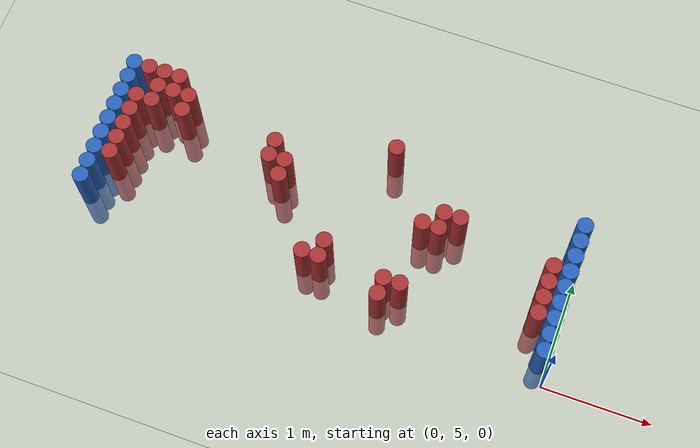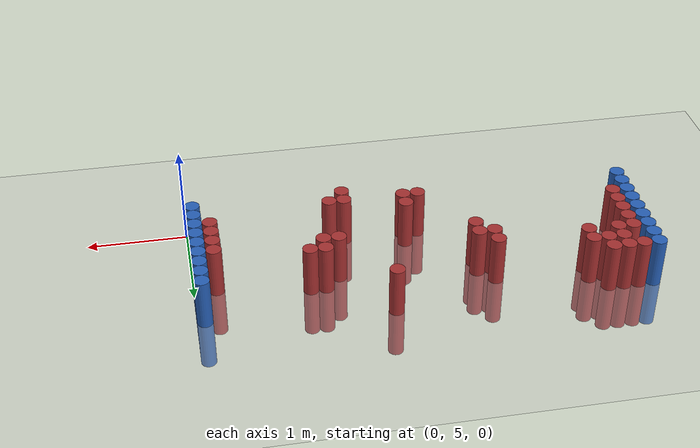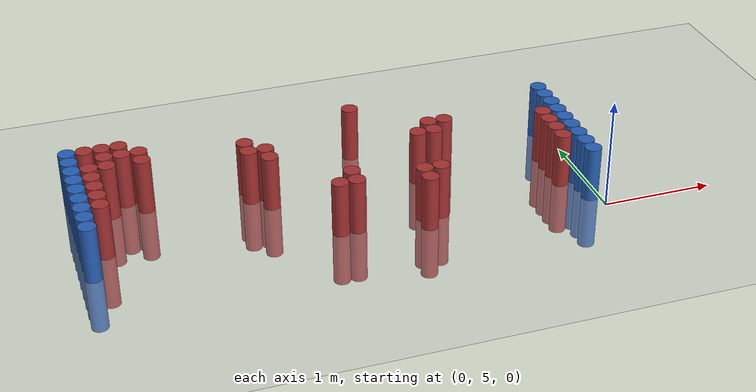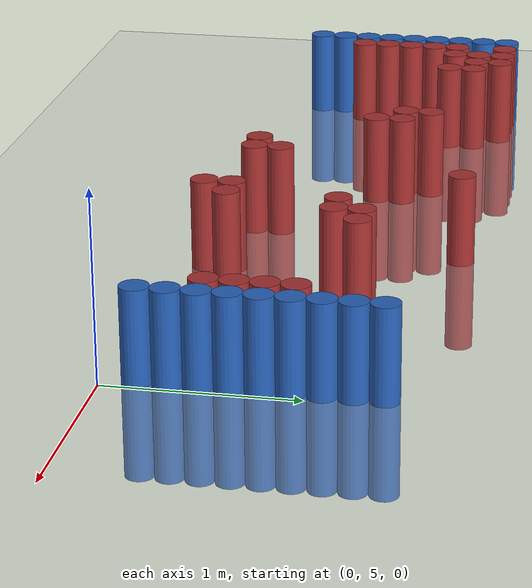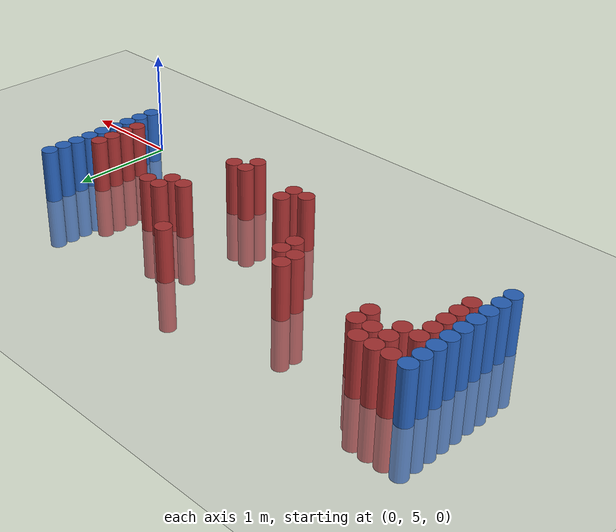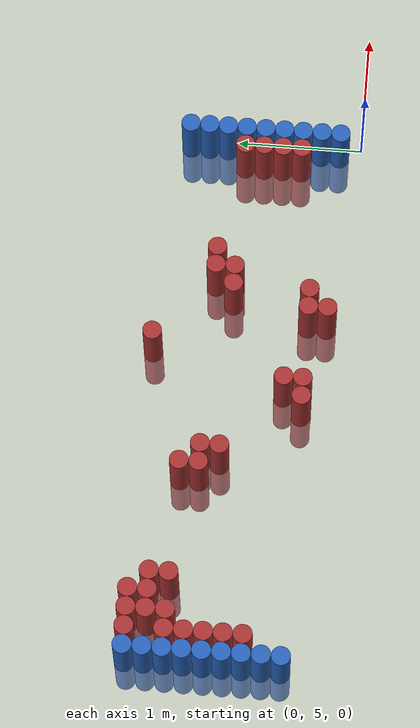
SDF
<sdf version="1.6">
 <world name="default">
  <model name="ground_plane">
   <static>1</static>
   <link name="link">
    <collision name="collision">
     <geometry><plane><normal>0 0 1</normal><size>100 100</size></plane></geometry>
     <surface><friction><ode><mu>100</mu><mu2>50</mu2></ode></friction></surface>
    </collision>
    <visual name="visual">
     <cast_shadows>0</cast_shadows>
     <geometry><plane><normal>0 0 1</normal><size>100 100</size></plane></geometry>
     <material>
      <script><uri>file://media/materials/scripts/gazebo.material</uri><name>Gazebo/Grey</name></script>
     </material>
    </visual>
   </link>
  </model>
  <model name="unit_cylinder_97">
   <static>1</static>
   <pose>-4.425000 5.325000 0.000000 0.000000 0.000000 0.000000</pose>
   <link name="link">
    <inertial>
     <mass>1</mass>
     <inertia><ixx>0.145833</ixx><ixy>0</ixy><ixz>0</ixz><iyy>0.145833</iyy><iyz>0</iyz><izz>0.125</izz></inertia>
    </inertial>
    <collision name="collision">
     <geometry><cylinder><radius>0.075000</radius><length>1</length></cylinder></geometry>
    </collision>
    <visual name="visual">
     <geometry><cylinder><radius>0.075000</radius><length>1</length></cylinder></geometry>
     <material>
      <ambient>0.152000 0.379000 0.720000 1</ambient>
      <diffuse>0.152000 0.379000 0.720000 1</diffuse>
     </material>
     <material>
      <script><name>Gazebo/Grey</name><uri>file://media/materials/scripts/gazebo.material</uri></script>
     </material>
    </visual>
   </link>
  </model>
  <model name="unit_cylinder_98">
   <static>1</static>
   <pose>-4.425000 5.475000 0.000000 0.000000 0.000000 0.000000</pose>
   <link name="link">
    <inertial>
     <mass>1</mass>
     <inertia><ixx>0.145833</ixx><ixy>0</ixy><ixz>0</ixz><iyy>0.145833</iyy><iyz>0</iyz><izz>0.125</izz></inertia>
    </inertial>
    <collision name="collision">
     <geometry><cylinder><radius>0.075000</radius><length>1</length></cylinder></geometry>
    </collision>
    <visual name="visual">
     <geometry><cylinder><radius>0.075000</radius><length>1</length></cylinder></geometry>
     <material>
      <ambient>0.152000 0.379000 0.720000 1</ambient>
      <diffuse>0.152000 0.379000 0.720000 1</diffuse>
     </material>
     <material>
      <script><name>Gazebo/Grey</name><uri>file://media/materials/scripts/gazebo.material</uri></script>
     </material>
    </visual>
   </link>
  </model>
  <model name="unit_cylinder_99">
   <static>1</static>
   <pose>-4.425000 5.625000 0.000000 0.000000 0.000000 0.000000</pose>
   <link name="link">
    <inertial>
     <mass>1</mass>
     <inertia><ixx>0.145833</ixx><ixy>0</ixy><ixz>0</ixz><iyy>0.145833</iyy><iyz>0</iyz><izz>0.125</izz></inertia>
    </inertial>
    <collision name="collision">
     <geometry><cylinder><radius>0.075000</radius><length>1</length></cylinder></geometry>
    </collision>
    <visual name="visual">
     <geometry><cylinder><radius>0.075000</radius><length>1</length></cylinder></geometry>
     <material>
      <ambient>0.152000 0.379000 0.720000 1</ambient>
      <diffuse>0.152000 0.379000 0.720000 1</diffuse>
     </material>
     <material>
      <script><name>Gazebo/Grey</name><uri>file://media/materials/scripts/gazebo.material</uri></script>
     </material>
    </visual>
   </link>
  </model>
  <model name="unit_cylinder_100">
   <static>1</static>
   <pose>-4.425000 5.775000 0.000000 0.000000 0.000000 0.000000</pose>
   <link name="link">
    <inertial>
     <mass>1</mass>
     <inertia><ixx>0.145833</ixx><ixy>0</ixy><ixz>0</ixz><iyy>0.145833</iyy><iyz>0</iyz><izz>0.125</izz></inertia>
    </inertial>
    <collision name="collision">
     <geometry><cylinder><radius>0.075000</radius><length>1</length></cylinder></geometry>
    </collision>
    <visual name="visual">
     <geometry><cylinder><radius>0.075000</radius><length>1</length></cylinder></geometry>
     <material>
      <ambient>0.152000 0.379000 0.720000 1</ambient>
      <diffuse>0.152000 0.379000 0.720000 1</diffuse>
     </material>
     <material>
      <script><name>Gazebo/Grey</name><uri>file://media/materials/scripts/gazebo.material</uri></script>
     </material>
    </visual>
   </link>
  </model>
  <model name="unit_cylinder_101">
   <static>1</static>
   <pose>-4.425000 5.925000 0.000000 0.000000 0.000000 0.000000</pose>
   <link name="link">
    <inertial>
     <mass>1</mass>
     <inertia><ixx>0.145833</ixx><ixy>0</ixy><ixz>0</ixz><iyy>0.145833</iyy><iyz>0</iyz><izz>0.125</izz></inertia>
    </inertial>
    <collision name="collision">
     <geometry><cylinder><radius>0.075000</radius><length>1</length></cylinder></geometry>
    </collision>
    <visual name="visual">
     <geometry><cylinder><radius>0.075000</radius><length>1</length></cylinder></geometry>
     <material>
      <ambient>0.152000 0.379000 0.720000 1</ambient>
      <diffuse>0.152000 0.379000 0.720000 1</diffuse>
     </material>
     <material>
      <script><name>Gazebo/Grey</name><uri>file://media/materials/scripts/gazebo.material</uri></script>
     </material>
    </visual>
   </link>
  </model>
  <model name="unit_cylinder_102">
   <static>1</static>
   <pose>-4.425000 6.075000 0.000000 0.000000 0.000000 0.000000</pose>
   <link name="link">
    <inertial>
     <mass>1</mass>
     <inertia><ixx>0.145833</ixx><ixy>0</ixy><ixz>0</ixz><iyy>0.145833</iyy><iyz>0</iyz><izz>0.125</izz></inertia>
    </inertial>
    <collision name="collision">
     <geometry><cylinder><radius>0.075000</radius><length>1</length></cylinder></geometry>
    </collision>
    <visual name="visual">
     <geometry><cylinder><radius>0.075000</radius><length>1</length></cylinder></geometry>
     <material>
      <ambient>0.152000 0.379000 0.720000 1</ambient>
      <diffuse>0.152000 0.379000 0.720000 1</diffuse>
     </material>
     <material>
      <script><name>Gazebo/Grey</name><uri>file://media/materials/scripts/gazebo.material</uri></script>
     </material>
    </visual>
   </link>
  </model>
  <model name="unit_cylinder_103">
   <static>1</static>
   <pose>-4.425000 6.225000 0.000000 0.000000 0.000000 0.000000</pose>
   <link name="link">
    <inertial>
     <mass>1</mass>
     <inertia><ixx>0.145833</ixx><ixy>0</ixy><ixz>0</ixz><iyy>0.145833</iyy><iyz>0</iyz><izz>0.125</izz></inertia>
    </inertial>
    <collision name="collision">
     <geometry><cylinder><radius>0.075000</radius><length>1</length></cylinder></geometry>
    </collision>
    <visual name="visual">
     <geometry><cylinder><radius>0.075000</radius><length>1</length></cylinder></geometry>
     <material>
      <ambient>0.152000 0.379000 0.720000 1</ambient>
      <diffuse>0.152000 0.379000 0.720000 1</diffuse>
     </material>
     <material>
      <script><name>Gazebo/Grey</name><uri>file://media/materials/scripts/gazebo.material</uri></script>
     </material>
    </visual>
   </link>
  </model>
  <model name="unit_cylinder_104">
   <static>1</static>
   <pose>-4.425000 6.375000 0.000000 0.000000 0.000000 0.000000</pose>
   <link name="link">
    <inertial>
     <mass>1</mass>
     <inertia><ixx>0.145833</ixx><ixy>0</ixy><ixz>0</ixz><iyy>0.145833</iyy><iyz>0</iyz><izz>0.125</izz></inertia>
    </inertial>
    <collision name="collision">
     <geometry><cylinder><radius>0.075000</radius><length>1</length></cylinder></geometry>
    </collision>
    <visual name="visual">
     <geometry><cylinder><radius>0.075000</radius><length>1</length></cylinder></geometry>
     <material>
      <ambient>0.152000 0.379000 0.720000 1</ambient>
      <diffuse>0.152000 0.379000 0.720000 1</diffuse>
     </material>
     <material>
      <script><name>Gazebo/Grey</name><uri>file://media/materials/scripts/gazebo.material</uri></script>
     </material>
    </visual>
   </link>
  </model>
  <model name="unit_cylinder_105">
   <static>1</static>
   <pose>-4.425000 6.525000 0.000000 0.000000 0.000000 0.000000</pose>
   <link name="link">
    <inertial>
     <mass>1</mass>
     <inertia><ixx>0.145833</ixx><ixy>0</ixy><ixz>0</ixz><iyy>0.145833</iyy><iyz>0</iyz><izz>0.125</izz></inertia>
    </inertial>
    <collision name="collision">
     <geometry><cylinder><radius>0.075000</radius><length>1</length></cylinder></geometry>
    </collision>
    <visual name="visual">
     <geometry><cylinder><radius>0.075000</radius><length>1</length></cylinder></geometry>
     <material>
      <ambient>0.152000 0.379000 0.720000 1</ambient>
      <diffuse>0.152000 0.379000 0.720000 1</diffuse>
     </material>
     <material>
      <script><name>Gazebo/Grey</name><uri>file://media/materials/scripts/gazebo.material</uri></script>
     </material>
    </visual>
   </link>
  </model>
  <model name="unit_cylinder_127">
   <static>1</static>
   <pose>-4.275000 5.625000 0.000000 0.000000 0.000000 0.000000</pose>
   <link name="link">
    <inertial>
     <mass>1</mass>
     <inertia><ixx>0.145833</ixx><ixy>0</ixy><ixz>0</ixz><iyy>0.145833</iyy><iyz>0</iyz><izz>0.125</izz></inertia>
    </inertial>
    <collision name="collision">
     <geometry><cylinder><radius>0.075000</radius><length>1</length></cylinder></geometry>
    </collision>
    <visual name="visual">
     <geometry><cylinder><radius>0.075000</radius><length>1</length></cylinder></geometry>
     <material>
      <ambient>0.648000 0.192000 0.192000 1</ambient>
      <diffuse>0.648000 0.192000 0.192000 1</diffuse>
     </material>
     <material>
      <script><name>Gazebo/Grey</name><uri>file://media/materials/scripts/gazebo.material</uri></script>
     </material>
    </visual>
   </link>
  </model>
  <model name="unit_cylinder_128">
   <static>1</static>
   <pose>-4.275000 5.775000 0.000000 0.000000 0.000000 0.000000</pose>
   <link name="link">
    <inertial>
     <mass>1</mass>
     <inertia><ixx>0.145833</ixx><ixy>0</ixy><ixz>0</ixz><iyy>0.145833</iyy><iyz>0</iyz><izz>0.125</izz></inertia>
    </inertial>
    <collision name="collision">
     <geometry><cylinder><radius>0.075000</radius><length>1</length></cylinder></geometry>
    </collision>
    <visual name="visual">
     <geometry><cylinder><radius>0.075000</radius><length>1</length></cylinder></geometry>
     <material>
      <ambient>0.648000 0.192000 0.192000 1</ambient>
      <diffuse>0.648000 0.192000 0.192000 1</diffuse>
     </material>
     <material>
      <script><name>Gazebo/Grey</name><uri>file://media/materials/scripts/gazebo.material</uri></script>
     </material>
    </visual>
   </link>
  </model>
  <model name="unit_cylinder_129">
   <static>1</static>
   <pose>-4.275000 5.925000 0.000000 0.000000 0.000000 0.000000</pose>
   <link name="link">
    <inertial>
     <mass>1</mass>
     <inertia><ixx>0.145833</ixx><ixy>0</ixy><ixz>0</ixz><iyy>0.145833</iyy><iyz>0</iyz><izz>0.125</izz></inertia>
    </inertial>
    <collision name="collision">
     <geometry><cylinder><radius>0.075000</radius><length>1</length></cylinder></geometry>
    </collision>
    <visual name="visual">
     <geometry><cylinder><radius>0.075000</radius><length>1</length></cylinder></geometry>
     <material>
      <ambient>0.648000 0.192000 0.192000 1</ambient>
      <diffuse>0.648000 0.192000 0.192000 1</diffuse>
     </material>
     <material>
      <script><name>Gazebo/Grey</name><uri>file://media/materials/scripts/gazebo.material</uri></script>
     </material>
    </visual>
   </link>
  </model>
  <model name="unit_cylinder_130">
   <static>1</static>
   <pose>-4.275000 6.075000 0.000000 0.000000 0.000000 0.000000</pose>
   <link name="link">
    <inertial>
     <mass>1</mass>
     <inertia><ixx>0.145833</ixx><ixy>0</ixy><ixz>0</ixz><iyy>0.145833</iyy><iyz>0</iyz><izz>0.125</izz></inertia>
    </inertial>
    <collision name="collision">
     <geometry><cylinder><radius>0.075000</radius><length>1</length></cylinder></geometry>
    </collision>
    <visual name="visual">
     <geometry><cylinder><radius>0.075000</radius><length>1</length></cylinder></geometry>
     <material>
      <ambient>0.648000 0.192000 0.192000 1</ambient>
      <diffuse>0.648000 0.192000 0.192000 1</diffuse>
     </material>
     <material>
      <script><name>Gazebo/Grey</name><uri>file://media/materials/scripts/gazebo.material</uri></script>
     </material>
    </visual>
   </link>
  </model>
  <model name="unit_cylinder_131">
   <static>1</static>
   <pose>-4.275000 6.225000 0.000000 0.000000 0.000000 0.000000</pose>
   <link name="link">
    <inertial>
     <mass>1</mass>
     <inertia><ixx>0.145833</ixx><ixy>0</ixy><ixz>0</ixz><iyy>0.145833</iyy><iyz>0</iyz><izz>0.125</izz></inertia>
    </inertial>
    <collision name="collision">
     <geometry><cylinder><radius>0.075000</radius><length>1</length></cylinder></geometry>
    </collision>
    <visual name="visual">
     <geometry><cylinder><radius>0.075000</radius><length>1</length></cylinder></geometry>
     <material>
      <ambient>0.648000 0.192000 0.192000 1</ambient>
      <diffuse>0.648000 0.192000 0.192000 1</diffuse>
     </material>
     <material>
      <script><name>Gazebo/Grey</name><uri>file://media/materials/scripts/gazebo.material</uri></script>
     </material>
    </visual>
   </link>
  </model>
  <model name="unit_cylinder_132">
   <static>1</static>
   <pose>-4.275000 6.525000 0.000000 0.000000 0.000000 0.000000</pose>
   <link name="link">
    <inertial>
     <mass>1</mass>
     <inertia><ixx>0.145833</ixx><ixy>0</ixy><ixz>0</ixz><iyy>0.145833</iyy><iyz>0</iyz><izz>0.125</izz></inertia>
    </inertial>
    <collision name="collision">
     <geometry><cylinder><radius>0.075000</radius><length>1</length></cylinder></geometry>
    </collision>
    <visual name="visual">
     <geometry><cylinder><radius>0.075000</radius><length>1</length></cylinder></geometry>
     <material>
      <ambient>0.648000 0.192000 0.192000 1</ambient>
      <diffuse>0.648000 0.192000 0.192000 1</diffuse>
     </material>
     <material>
      <script><name>Gazebo/Grey</name><uri>file://media/materials/scripts/gazebo.material</uri></script>
     </material>
    </visual>
   </link>
  </model>
  <model name="unit_cylinder_140">
   <static>1</static>
   <pose>-4.125000 6.225000 0.000000 0.000000 0.000000 0.000000</pose>
   <link name="link">
    <inertial>
     <mass>1</mass>
     <inertia><ixx>0.145833</ixx><ixy>0</ixy><ixz>0</ixz><iyy>0.145833</iyy><iyz>0</iyz><izz>0.125</izz></inertia>
    </inertial>
    <collision name="collision">
     <geometry><cylinder><radius>0.075000</radius><length>1</length></cylinder></geometry>
    </collision>
    <visual name="visual">
     <geometry><cylinder><radius>0.075000</radius><length>1</length></cylinder></geometry>
     <material>
      <ambient>0.648000 0.192000 0.192000 1</ambient>
      <diffuse>0.648000 0.192000 0.192000 1</diffuse>
     </material>
     <material>
      <script><name>Gazebo/Grey</name><uri>file://media/materials/scripts/gazebo.material</uri></script>
     </material>
    </visual>
   </link>
  </model>
  <model name="unit_cylinder_141">
   <static>1</static>
   <pose>-4.125000 6.375000 0.000000 0.000000 0.000000 0.000000</pose>
   <link name="link">
    <inertial>
     <mass>1</mass>
     <inertia><ixx>0.145833</ixx><ixy>0</ixy><ixz>0</ixz><iyy>0.145833</iyy><iyz>0</iyz><izz>0.125</izz></inertia>
    </inertial>
    <collision name="collision">
     <geometry><cylinder><radius>0.075000</radius><length>1</length></cylinder></geometry>
    </collision>
    <visual name="visual">
     <geometry><cylinder><radius>0.075000</radius><length>1</length></cylinder></geometry>
     <material>
      <ambient>0.648000 0.192000 0.192000 1</ambient>
      <diffuse>0.648000 0.192000 0.192000 1</diffuse>
     </material>
     <material>
      <script><name>Gazebo/Grey</name><uri>file://media/materials/scripts/gazebo.material</uri></script>
     </material>
    </visual>
   </link>
  </model>
  <model name="unit_cylinder_142">
   <static>1</static>
   <pose>-4.125000 6.525000 0.000000 0.000000 0.000000 0.000000</pose>
   <link name="link">
    <inertial>
     <mass>1</mass>
     <inertia><ixx>0.145833</ixx><ixy>0</ixy><ixz>0</ixz><iyy>0.145833</iyy><iyz>0</iyz><izz>0.125</izz></inertia>
    </inertial>
    <collision name="collision">
     <geometry><cylinder><radius>0.075000</radius><length>1</length></cylinder></geometry>
    </collision>
    <visual name="visual">
     <geometry><cylinder><radius>0.075000</radius><length>1</length></cylinder></geometry>
     <material>
      <ambient>0.648000 0.192000 0.192000 1</ambient>
      <diffuse>0.648000 0.192000 0.192000 1</diffuse>
     </material>
     <material>
      <script><name>Gazebo/Grey</name><uri>file://media/materials/scripts/gazebo.material</uri></script>
     </material>
    </visual>
   </link>
  </model>
  <model name="unit_cylinder_145">
   <static>1</static>
   <pose>-3.975000 6.375000 0.000000 0.000000 0.000000 0.000000</pose>
   <link name="link">
    <inertial>
     <mass>1</mass>
     <inertia><ixx>0.145833</ixx><ixy>0</ixy><ixz>0</ixz><iyy>0.145833</iyy><iyz>0</iyz><izz>0.125</izz></inertia>
    </inertial>
    <collision name="collision">
     <geometry><cylinder><radius>0.075000</radius><length>1</length></cylinder></geometry>
    </collision>
    <visual name="visual">
     <geometry><cylinder><radius>0.075000</radius><length>1</length></cylinder></geometry>
     <material>
      <ambient>0.648000 0.192000 0.192000 1</ambient>
      <diffuse>0.648000 0.192000 0.192000 1</diffuse>
     </material>
     <material>
      <script><name>Gazebo/Grey</name><uri>file://media/materials/scripts/gazebo.material</uri></script>
     </material>
    </visual>
   </link>
  </model>
  <model name="unit_cylinder_146">
   <static>1</static>
   <pose>-3.975000 6.525000 0.000000 0.000000 0.000000 0.000000</pose>
   <link name="link">
    <inertial>
     <mass>1</mass>
     <inertia><ixx>0.145833</ixx><ixy>0</ixy><ixz>0</ixz><iyy>0.145833</iyy><iyz>0</iyz><izz>0.125</izz></inertia>
    </inertial>
    <collision name="collision">
     <geometry><cylinder><radius>0.075000</radius><length>1</length></cylinder></geometry>
    </collision>
    <visual name="visual">
     <geometry><cylinder><radius>0.075000</radius><length>1</length></cylinder></geometry>
     <material>
      <ambient>0.648000 0.192000 0.192000 1</ambient>
      <diffuse>0.648000 0.192000 0.192000 1</diffuse>
     </material>
     <material>
      <script><name>Gazebo/Grey</name><uri>file://media/materials/scripts/gazebo.material</uri></script>
     </material>
    </visual>
   </link>
  </model>
  <model name="unit_cylinder_149">
   <static>1</static>
   <pose>-3.825000 6.225000 0.000000 0.000000 0.000000 0.000000</pose>
   <link name="link">
    <inertial>
     <mass>1</mass>
     <inertia><ixx>0.145833</ixx><ixy>0</ixy><ixz>0</ixz><iyy>0.145833</iyy><iyz>0</iyz><izz>0.125</izz></inertia>
    </inertial>
    <collision name="collision">
     <geometry><cylinder><radius>0.075000</radius><length>1</length></cylinder></geometry>
    </collision>
    <visual name="visual">
     <geometry><cylinder><radius>0.075000</radius><length>1</length></cylinder></geometry>
     <material>
      <ambient>0.648000 0.192000 0.192000 1</ambient>
      <diffuse>0.648000 0.192000 0.192000 1</diffuse>
     </material>
     <material>
      <script><name>Gazebo/Grey</name><uri>file://media/materials/scripts/gazebo.material</uri></script>
     </material>
    </visual>
   </link>
  </model>
  <model name="unit_cylinder_150">
   <static>1</static>
   <pose>-3.825000 6.375000 0.000000 0.000000 0.000000 0.000000</pose>
   <link name="link">
    <inertial>
     <mass>1</mass>
     <inertia><ixx>0.145833</ixx><ixy>0</ixy><ixz>0</ixz><iyy>0.145833</iyy><iyz>0</iyz><izz>0.125</izz></inertia>
    </inertial>
    <collision name="collision">
     <geometry><cylinder><radius>0.075000</radius><length>1</length></cylinder></geometry>
    </collision>
    <visual name="visual">
     <geometry><cylinder><radius>0.075000</radius><length>1</length></cylinder></geometry>
     <material>
      <ambient>0.648000 0.192000 0.192000 1</ambient>
      <diffuse>0.648000 0.192000 0.192000 1</diffuse>
     </material>
     <material>
      <script><name>Gazebo/Grey</name><uri>file://media/materials/scripts/gazebo.material</uri></script>
     </material>
    </visual>
   </link>
  </model>
  <model name="unit_cylinder_167">
   <static>1</static>
   <pose>-2.925000 6.075000 0.000000 0.000000 0.000000 0.000000</pose>
   <link name="link">
    <inertial>
     <mass>1</mass>
     <inertia><ixx>0.145833</ixx><ixy>0</ixy><ixz>0</ixz><iyy>0.145833</iyy><iyz>0</iyz><izz>0.125</izz></inertia>
    </inertial>
    <collision name="collision">
     <geometry><cylinder><radius>0.075000</radius><length>1</length></cylinder></geometry>
    </collision>
    <visual name="visual">
     <geometry><cylinder><radius>0.075000</radius><length>1</length></cylinder></geometry>
     <material>
      <ambient>0.648000 0.192000 0.192000 1</ambient>
      <diffuse>0.648000 0.192000 0.192000 1</diffuse>
     </material>
     <material>
      <script><name>Gazebo/Grey</name><uri>file://media/materials/scripts/gazebo.material</uri></script>
     </material>
    </visual>
   </link>
  </model>
  <model name="unit_cylinder_168">
   <static>1</static>
   <pose>-2.925000 6.225000 0.000000 0.000000 0.000000 0.000000</pose>
   <link name="link">
    <inertial>
     <mass>1</mass>
     <inertia><ixx>0.145833</ixx><ixy>0</ixy><ixz>0</ixz><iyy>0.145833</iyy><iyz>0</iyz><izz>0.125</izz></inertia>
    </inertial>
    <collision name="collision">
     <geometry><cylinder><radius>0.075000</radius><length>1</length></cylinder></geometry>
    </collision>
    <visual name="visual">
     <geometry><cylinder><radius>0.075000</radius><length>1</length></cylinder></geometry>
     <material>
      <ambient>0.648000 0.192000 0.192000 1</ambient>
      <diffuse>0.648000 0.192000 0.192000 1</diffuse>
     </material>
     <material>
      <script><name>Gazebo/Grey</name><uri>file://media/materials/scripts/gazebo.material</uri></script>
     </material>
    </visual>
   </link>
  </model>
  <model name="unit_cylinder_172">
   <static>1</static>
   <pose>-2.775000 5.925000 0.000000 0.000000 0.000000 0.000000</pose>
   <link name="link">
    <inertial>
     <mass>1</mass>
     <inertia><ixx>0.145833</ixx><ixy>0</ixy><ixz>0</ixz><iyy>0.145833</iyy><iyz>0</iyz><izz>0.125</izz></inertia>
    </inertial>
    <collision name="collision">
     <geometry><cylinder><radius>0.075000</radius><length>1</length></cylinder></geometry>
    </collision>
    <visual name="visual">
     <geometry><cylinder><radius>0.075000</radius><length>1</length></cylinder></geometry>
     <material>
      <ambient>0.648000 0.192000 0.192000 1</ambient>
      <diffuse>0.648000 0.192000 0.192000 1</diffuse>
     </material>
     <material>
      <script><name>Gazebo/Grey</name><uri>file://media/materials/scripts/gazebo.material</uri></script>
     </material>
    </visual>
   </link>
  </model>
  <model name="unit_cylinder_173">
   <static>1</static>
   <pose>-2.775000 6.075000 0.000000 0.000000 0.000000 0.000000</pose>
   <link name="link">
    <inertial>
     <mass>1</mass>
     <inertia><ixx>0.145833</ixx><ixy>0</ixy><ixz>0</ixz><iyy>0.145833</iyy><iyz>0</iyz><izz>0.125</izz></inertia>
    </inertial>
    <collision name="collision">
     <geometry><cylinder><radius>0.075000</radius><length>1</length></cylinder></geometry>
    </collision>
    <visual name="visual">
     <geometry><cylinder><radius>0.075000</radius><length>1</length></cylinder></geometry>
     <material>
      <ambient>0.648000 0.192000 0.192000 1</ambient>
      <diffuse>0.648000 0.192000 0.192000 1</diffuse>
     </material>
     <material>
      <script><name>Gazebo/Grey</name><uri>file://media/materials/scripts/gazebo.material</uri></script>
     </material>
    </visual>
   </link>
  </model>
  <model name="unit_cylinder_179">
   <static>1</static>
   <pose>-2.325000 5.325000 0.000000 0.000000 0.000000 0.000000</pose>
   <link name="link">
    <inertial>
     <mass>1</mass>
     <inertia><ixx>0.145833</ixx><ixy>0</ixy><ixz>0</ixz><iyy>0.145833</iyy><iyz>0</iyz><izz>0.125</izz></inertia>
    </inertial>
    <collision name="collision">
     <geometry><cylinder><radius>0.075000</radius><length>1</length></cylinder></geometry>
    </collision>
    <visual name="visual">
     <geometry><cylinder><radius>0.075000</radius><length>1</length></cylinder></geometry>
     <material>
      <ambient>0.648000 0.192000 0.192000 1</ambient>
      <diffuse>0.648000 0.192000 0.192000 1</diffuse>
     </material>
     <material>
      <script><name>Gazebo/Grey</name><uri>file://media/materials/scripts/gazebo.material</uri></script>
     </material>
    </visual>
   </link>
  </model>
  <model name="unit_cylinder_181">
   <static>1</static>
   <pose>-2.175000 5.325000 0.000000 0.000000 0.000000 0.000000</pose>
   <link name="link">
    <inertial>
     <mass>1</mass>
     <inertia><ixx>0.145833</ixx><ixy>0</ixy><ixz>0</ixz><iyy>0.145833</iyy><iyz>0</iyz><izz>0.125</izz></inertia>
    </inertial>
    <collision name="collision">
     <geometry><cylinder><radius>0.075000</radius><length>1</length></cylinder></geometry>
    </collision>
    <visual name="visual">
     <geometry><cylinder><radius>0.075000</radius><length>1</length></cylinder></geometry>
     <material>
      <ambient>0.648000 0.192000 0.192000 1</ambient>
      <diffuse>0.648000 0.192000 0.192000 1</diffuse>
     </material>
     <material>
      <script><name>Gazebo/Grey</name><uri>file://media/materials/scripts/gazebo.material</uri></script>
     </material>
    </visual>
   </link>
  </model>
  <model name="unit_cylinder_182">
   <static>1</static>
   <pose>-2.175000 5.475000 0.000000 0.000000 0.000000 0.000000</pose>
   <link name="link">
    <inertial>
     <mass>1</mass>
     <inertia><ixx>0.145833</ixx><ixy>0</ixy><ixz>0</ixz><iyy>0.145833</iyy><iyz>0</iyz><izz>0.125</izz></inertia>
    </inertial>
    <collision name="collision">
     <geometry><cylinder><radius>0.075000</radius><length>1</length></cylinder></geometry>
    </collision>
    <visual name="visual">
     <geometry><cylinder><radius>0.075000</radius><length>1</length></cylinder></geometry>
     <material>
      <ambient>0.648000 0.192000 0.192000 1</ambient>
      <diffuse>0.648000 0.192000 0.192000 1</diffuse>
     </material>
     <material>
      <script><name>Gazebo/Grey</name><uri>file://media/materials/scripts/gazebo.material</uri></script>
     </material>
    </visual>
   </link>
  </model>
  <model name="unit_cylinder_187">
   <static>1</static>
   <pose>-1.875000 6.525000 0.000000 0.000000 0.000000 0.000000</pose>
   <link name="link">
    <inertial>
     <mass>1</mass>
     <inertia><ixx>0.145833</ixx><ixy>0</ixy><ixz>0</ixz><iyy>0.145833</iyy><iyz>0</iyz><izz>0.125</izz></inertia>
    </inertial>
    <collision name="collision">
     <geometry><cylinder><radius>0.075000</radius><length>1</length></cylinder></geometry>
    </collision>
    <visual name="visual">
     <geometry><cylinder><radius>0.075000</radius><length>1</length></cylinder></geometry>
     <material>
      <ambient>0.648000 0.192000 0.192000 1</ambient>
      <diffuse>0.648000 0.192000 0.192000 1</diffuse>
     </material>
     <material>
      <script><name>Gazebo/Grey</name><uri>file://media/materials/scripts/gazebo.material</uri></script>
     </material>
    </visual>
   </link>
  </model>
  <model name="unit_cylinder_196">
   <static>1</static>
   <pose>-1.575000 5.175000 0.000000 0.000000 0.000000 0.000000</pose>
   <link name="link">
    <inertial>
     <mass>1</mass>
     <inertia><ixx>0.145833</ixx><ixy>0</ixy><ixz>0</ixz><iyy>0.145833</iyy><iyz>0</iyz><izz>0.125</izz></inertia>
    </inertial>
    <collision name="collision">
     <geometry><cylinder><radius>0.075000</radius><length>1</length></cylinder></geometry>
    </collision>
    <visual name="visual">
     <geometry><cylinder><radius>0.075000</radius><length>1</length></cylinder></geometry>
     <material>
      <ambient>0.648000 0.192000 0.192000 1</ambient>
      <diffuse>0.648000 0.192000 0.192000 1</diffuse>
     </material>
     <material>
      <script><name>Gazebo/Grey</name><uri>file://media/materials/scripts/gazebo.material</uri></script>
     </material>
    </visual>
   </link>
  </model>
  <model name="unit_cylinder_197">
   <static>1</static>
   <pose>-1.575000 5.325000 0.000000 0.000000 0.000000 0.000000</pose>
   <link name="link">
    <inertial>
     <mass>1</mass>
     <inertia><ixx>0.145833</ixx><ixy>0</ixy><ixz>0</ixz><iyy>0.145833</iyy><iyz>0</iyz><izz>0.125</izz></inertia>
    </inertial>
    <collision name="collision">
     <geometry><cylinder><radius>0.075000</radius><length>1</length></cylinder></geometry>
    </collision>
    <visual name="visual">
     <geometry><cylinder><radius>0.075000</radius><length>1</length></cylinder></geometry>
     <material>
      <ambient>0.648000 0.192000 0.192000 1</ambient>
      <diffuse>0.648000 0.192000 0.192000 1</diffuse>
     </material>
     <material>
      <script><name>Gazebo/Grey</name><uri>file://media/materials/scripts/gazebo.material</uri></script>
     </material>
    </visual>
   </link>
  </model>
  <model name="unit_cylinder_202">
   <static>1</static>
   <pose>-1.425000 5.325000 0.000000 0.000000 0.000000 0.000000</pose>
   <link name="link">
    <inertial>
     <mass>1</mass>
     <inertia><ixx>0.145833</ixx><ixy>0</ixy><ixz>0</ixz><iyy>0.145833</iyy><iyz>0</iyz><izz>0.125</izz></inertia>
    </inertial>
    <collision name="collision">
     <geometry><cylinder><radius>0.075000</radius><length>1</length></cylinder></geometry>
    </collision>
    <visual name="visual">
     <geometry><cylinder><radius>0.075000</radius><length>1</length></cylinder></geometry>
     <material>
      <ambient>0.648000 0.192000 0.192000 1</ambient>
      <diffuse>0.648000 0.192000 0.192000 1</diffuse>
     </material>
     <material>
      <script><name>Gazebo/Grey</name><uri>file://media/materials/scripts/gazebo.material</uri></script>
     </material>
    </visual>
   </link>
  </model>
  <model name="unit_cylinder_203">
   <static>1</static>
   <pose>-1.425000 5.925000 0.000000 0.000000 0.000000 0.000000</pose>
   <link name="link">
    <inertial>
     <mass>1</mass>
     <inertia><ixx>0.145833</ixx><ixy>0</ixy><ixz>0</ixz><iyy>0.145833</iyy><iyz>0</iyz><izz>0.125</izz></inertia>
    </inertial>
    <collision name="collision">
     <geometry><cylinder><radius>0.075000</radius><length>1</length></cylinder></geometry>
    </collision>
    <visual name="visual">
     <geometry><cylinder><radius>0.075000</radius><length>1</length></cylinder></geometry>
     <material>
      <ambient>0.648000 0.192000 0.192000 1</ambient>
      <diffuse>0.648000 0.192000 0.192000 1</diffuse>
     </material>
     <material>
      <script><name>Gazebo/Grey</name><uri>file://media/materials/scripts/gazebo.material</uri></script>
     </material>
    </visual>
   </link>
  </model>
  <model name="unit_cylinder_207">
   <static>1</static>
   <pose>-1.275000 5.925000 0.000000 0.000000 0.000000 0.000000</pose>
   <link name="link">
    <inertial>
     <mass>1</mass>
     <inertia><ixx>0.145833</ixx><ixy>0</ixy><ixz>0</ixz><iyy>0.145833</iyy><iyz>0</iyz><izz>0.125</izz></inertia>
    </inertial>
    <collision name="collision">
     <geometry><cylinder><radius>0.075000</radius><length>1</length></cylinder></geometry>
    </collision>
    <visual name="visual">
     <geometry><cylinder><radius>0.075000</radius><length>1</length></cylinder></geometry>
     <material>
      <ambient>0.648000 0.192000 0.192000 1</ambient>
      <diffuse>0.648000 0.192000 0.192000 1</diffuse>
     </material>
     <material>
      <script><name>Gazebo/Grey</name><uri>file://media/materials/scripts/gazebo.material</uri></script>
     </material>
    </visual>
   </link>
  </model>
  <model name="unit_cylinder_208">
   <static>1</static>
   <pose>-1.275000 6.075000 0.000000 0.000000 0.000000 0.000000</pose>
   <link name="link">
    <inertial>
     <mass>1</mass>
     <inertia><ixx>0.145833</ixx><ixy>0</ixy><ixz>0</ixz><iyy>0.145833</iyy><iyz>0</iyz><izz>0.125</izz></inertia>
    </inertial>
    <collision name="collision">
     <geometry><cylinder><radius>0.075000</radius><length>1</length></cylinder></geometry>
    </collision>
    <visual name="visual">
     <geometry><cylinder><radius>0.075000</radius><length>1</length></cylinder></geometry>
     <material>
      <ambient>0.648000 0.192000 0.192000 1</ambient>
      <diffuse>0.648000 0.192000 0.192000 1</diffuse>
     </material>
     <material>
      <script><name>Gazebo/Grey</name><uri>file://media/materials/scripts/gazebo.material</uri></script>
     </material>
    </visual>
   </link>
  </model>
  <model name="unit_cylinder_209">
   <static>1</static>
   <pose>-1.125000 6.075000 0.000000 0.000000 0.000000 0.000000</pose>
   <link name="link">
    <inertial>
     <mass>1</mass>
     <inertia><ixx>0.145833</ixx><ixy>0</ixy><ixz>0</ixz><iyy>0.145833</iyy><iyz>0</iyz><izz>0.125</izz></inertia>
    </inertial>
    <collision name="collision">
     <geometry><cylinder><radius>0.075000</radius><length>1</length></cylinder></geometry>
    </collision>
    <visual name="visual">
     <geometry><cylinder><radius>0.075000</radius><length>1</length></cylinder></geometry>
     <material>
      <ambient>0.648000 0.192000 0.192000 1</ambient>
      <diffuse>0.648000 0.192000 0.192000 1</diffuse>
     </material>
     <material>
      <script><name>Gazebo/Grey</name><uri>file://media/materials/scripts/gazebo.material</uri></script>
     </material>
    </visual>
   </link>
  </model>
  <model name="unit_cylinder_210">
   <static>1</static>
   <pose>-0.225000 5.475000 0.000000 0.000000 0.000000 0.000000</pose>
   <link name="link">
    <inertial>
     <mass>1</mass>
     <inertia><ixx>0.145833</ixx><ixy>0</ixy><ixz>0</ixz><iyy>0.145833</iyy><iyz>0</iyz><izz>0.125</izz></inertia>
    </inertial>
    <collision name="collision">
     <geometry><cylinder><radius>0.075000</radius><length>1</length></cylinder></geometry>
    </collision>
    <visual name="visual">
     <geometry><cylinder><radius>0.075000</radius><length>1</length></cylinder></geometry>
     <material>
      <ambient>0.648000 0.192000 0.192000 1</ambient>
      <diffuse>0.648000 0.192000 0.192000 1</diffuse>
     </material>
     <material>
      <script><name>Gazebo/Grey</name><uri>file://media/materials/scripts/gazebo.material</uri></script>
     </material>
    </visual>
   </link>
  </model>
  <model name="unit_cylinder_211">
   <static>1</static>
   <pose>-0.225000 5.625000 0.000000 0.000000 0.000000 0.000000</pose>
   <link name="link">
    <inertial>
     <mass>1</mass>
     <inertia><ixx>0.145833</ixx><ixy>0</ixy><ixz>0</ixz><iyy>0.145833</iyy><iyz>0</iyz><izz>0.125</izz></inertia>
    </inertial>
    <collision name="collision">
     <geometry><cylinder><radius>0.075000</radius><length>1</length></cylinder></geometry>
    </collision>
    <visual name="visual">
     <geometry><cylinder><radius>0.075000</radius><length>1</length></cylinder></geometry>
     <material>
      <ambient>0.648000 0.192000 0.192000 1</ambient>
      <diffuse>0.648000 0.192000 0.192000 1</diffuse>
     </material>
     <material>
      <script><name>Gazebo/Grey</name><uri>file://media/materials/scripts/gazebo.material</uri></script>
     </material>
    </visual>
   </link>
  </model>
  <model name="unit_cylinder_212">
   <static>1</static>
   <pose>-0.225000 5.775000 0.000000 0.000000 0.000000 0.000000</pose>
   <link name="link">
    <inertial>
     <mass>1</mass>
     <inertia><ixx>0.145833</ixx><ixy>0</ixy><ixz>0</ixz><iyy>0.145833</iyy><iyz>0</iyz><izz>0.125</izz></inertia>
    </inertial>
    <collision name="collision">
     <geometry><cylinder><radius>0.075000</radius><length>1</length></cylinder></geometry>
    </collision>
    <visual name="visual">
     <geometry><cylinder><radius>0.075000</radius><length>1</length></cylinder></geometry>
     <material>
      <ambient>0.648000 0.192000 0.192000 1</ambient>
      <diffuse>0.648000 0.192000 0.192000 1</diffuse>
     </material>
     <material>
      <script><name>Gazebo/Grey</name><uri>file://media/materials/scripts/gazebo.material</uri></script>
     </material>
    </visual>
   </link>
  </model>
  <model name="unit_cylinder_213">
   <static>1</static>
   <pose>-0.225000 5.925000 0.000000 0.000000 0.000000 0.000000</pose>
   <link name="link">
    <inertial>
     <mass>1</mass>
     <inertia><ixx>0.145833</ixx><ixy>0</ixy><ixz>0</ixz><iyy>0.145833</iyy><iyz>0</iyz><izz>0.125</izz></inertia>
    </inertial>
    <collision name="collision">
     <geometry><cylinder><radius>0.075000</radius><length>1</length></cylinder></geometry>
    </collision>
    <visual name="visual">
     <geometry><cylinder><radius>0.075000</radius><length>1</length></cylinder></geometry>
     <material>
      <ambient>0.648000 0.192000 0.192000 1</ambient>
      <diffuse>0.648000 0.192000 0.192000 1</diffuse>
     </material>
     <material>
      <script><name>Gazebo/Grey</name><uri>file://media/materials/scripts/gazebo.material</uri></script>
     </material>
    </visual>
   </link>
  </model>
  <model name="unit_cylinder_221">
   <static>1</static>
   <pose>-0.075000 5.175000 0.000000 0.000000 0.000000 0.000000</pose>
   <link name="link">
    <inertial>
     <mass>1</mass>
     <inertia><ixx>0.145833</ixx><ixy>0</ixy><ixz>0</ixz><iyy>0.145833</iyy><iyz>0</iyz><izz>0.125</izz></inertia>
    </inertial>
    <collision name="collision">
     <geometry><cylinder><radius>0.075000</radius><length>1</length></cylinder></geometry>
    </collision>
    <visual name="visual">
     <geometry><cylinder><radius>0.075000</radius><length>1</length></cylinder></geometry>
     <material>
      <ambient>0.152000 0.379000 0.720000 1</ambient>
      <diffuse>0.152000 0.379000 0.720000 1</diffuse>
     </material>
     <material>
      <script><name>Gazebo/Grey</name><uri>file://media/materials/scripts/gazebo.material</uri></script>
     </material>
    </visual>
   </link>
  </model>
  <model name="unit_cylinder_222">
   <static>1</static>
   <pose>-0.075000 5.325000 0.000000 0.000000 0.000000 0.000000</pose>
   <link name="link">
    <inertial>
     <mass>1</mass>
     <inertia><ixx>0.145833</ixx><ixy>0</ixy><ixz>0</ixz><iyy>0.145833</iyy><iyz>0</iyz><izz>0.125</izz></inertia>
    </inertial>
    <collision name="collision">
     <geometry><cylinder><radius>0.075000</radius><length>1</length></cylinder></geometry>
    </collision>
    <visual name="visual">
     <geometry><cylinder><radius>0.075000</radius><length>1</length></cylinder></geometry>
     <material>
      <ambient>0.152000 0.379000 0.720000 1</ambient>
      <diffuse>0.152000 0.379000 0.720000 1</diffuse>
     </material>
     <material>
      <script><name>Gazebo/Grey</name><uri>file://media/materials/scripts/gazebo.material</uri></script>
     </material>
    </visual>
   </link>
  </model>
  <model name="unit_cylinder_223">
   <static>1</static>
   <pose>-0.075000 5.475000 0.000000 0.000000 0.000000 0.000000</pose>
   <link name="link">
    <inertial>
     <mass>1</mass>
     <inertia><ixx>0.145833</ixx><ixy>0</ixy><ixz>0</ixz><iyy>0.145833</iyy><iyz>0</iyz><izz>0.125</izz></inertia>
    </inertial>
    <collision name="collision">
     <geometry><cylinder><radius>0.075000</radius><length>1</length></cylinder></geometry>
    </collision>
    <visual name="visual">
     <geometry><cylinder><radius>0.075000</radius><length>1</length></cylinder></geometry>
     <material>
      <ambient>0.152000 0.379000 0.720000 1</ambient>
      <diffuse>0.152000 0.379000 0.720000 1</diffuse>
     </material>
     <material>
      <script><name>Gazebo/Grey</name><uri>file://media/materials/scripts/gazebo.material</uri></script>
     </material>
    </visual>
   </link>
  </model>
  <model name="unit_cylinder_224">
   <static>1</static>
   <pose>-0.075000 5.625000 0.000000 0.000000 0.000000 0.000000</pose>
   <link name="link">
    <inertial>
     <mass>1</mass>
     <inertia><ixx>0.145833</ixx><ixy>0</ixy><ixz>0</ixz><iyy>0.145833</iyy><iyz>0</iyz><izz>0.125</izz></inertia>
    </inertial>
    <collision name="collision">
     <geometry><cylinder><radius>0.075000</radius><length>1</length></cylinder></geometry>
    </collision>
    <visual name="visual">
     <geometry><cylinder><radius>0.075000</radius><length>1</length></cylinder></geometry>
     <material>
      <ambient>0.152000 0.379000 0.720000 1</ambient>
      <diffuse>0.152000 0.379000 0.720000 1</diffuse>
     </material>
     <material>
      <script><name>Gazebo/Grey</name><uri>file://media/materials/scripts/gazebo.material</uri></script>
     </material>
    </visual>
   </link>
  </model>
  <model name="unit_cylinder_225">
   <static>1</static>
   <pose>-0.075000 5.775000 0.000000 0.000000 0.000000 0.000000</pose>
   <link name="link">
    <inertial>
     <mass>1</mass>
     <inertia><ixx>0.145833</ixx><ixy>0</ixy><ixz>0</ixz><iyy>0.145833</iyy><iyz>0</iyz><izz>0.125</izz></inertia>
    </inertial>
    <collision name="collision">
     <geometry><cylinder><radius>0.075000</radius><length>1</length></cylinder></geometry>
    </collision>
    <visual name="visual">
     <geometry><cylinder><radius>0.075000</radius><length>1</length></cylinder></geometry>
     <material>
      <ambient>0.152000 0.379000 0.720000 1</ambient>
      <diffuse>0.152000 0.379000 0.720000 1</diffuse>
     </material>
     <material>
      <script><name>Gazebo/Grey</name><uri>file://media/materials/scripts/gazebo.material</uri></script>
     </material>
    </visual>
   </link>
  </model>
  <model name="unit_cylinder_226">
   <static>1</static>
   <pose>-0.075000 5.925000 0.000000 0.000000 0.000000 0.000000</pose>
   <link name="link">
    <inertial>
     <mass>1</mass>
     <inertia><ixx>0.145833</ixx><ixy>0</ixy><ixz>0</ixz><iyy>0.145833</iyy><iyz>0</iyz><izz>0.125</izz></inertia>
    </inertial>
    <collision name="collision">
     <geometry><cylinder><radius>0.075000</radius><length>1</length></cylinder></geometry>
    </collision>
    <visual name="visual">
     <geometry><cylinder><radius>0.075000</radius><length>1</length></cylinder></geometry>
     <material>
      <ambient>0.152000 0.379000 0.720000 1</ambient>
      <diffuse>0.152000 0.379000 0.720000 1</diffuse>
     </material>
     <material>
      <script><name>Gazebo/Grey</name><uri>file://media/materials/scripts/gazebo.material</uri></script>
     </material>
    </visual>
   </link>
  </model>
  <model name="unit_cylinder_227">
   <static>1</static>
   <pose>-0.075000 6.075000 0.000000 0.000000 0.000000 0.000000</pose>
   <link name="link">
    <inertial>
     <mass>1</mass>
     <inertia><ixx>0.145833</ixx><ixy>0</ixy><ixz>0</ixz><iyy>0.145833</iyy><iyz>0</iyz><izz>0.125</izz></inertia>
    </inertial>
    <collision name="collision">
     <geometry><cylinder><radius>0.075000</radius><length>1</length></cylinder></geometry>
    </collision>
    <visual name="visual">
     <geometry><cylinder><radius>0.075000</radius><length>1</length></cylinder></geometry>
     <material>
      <ambient>0.152000 0.379000 0.720000 1</ambient>
      <diffuse>0.152000 0.379000 0.720000 1</diffuse>
     </material>
     <material>
      <script><name>Gazebo/Grey</name><uri>file://media/materials/scripts/gazebo.material</uri></script>
     </material>
    </visual>
   </link>
  </model>
  <model name="unit_cylinder_228">
   <static>1</static>
   <pose>-0.075000 6.225000 0.000000 0.000000 0.000000 0.000000</pose>
   <link name="link">
    <inertial>
     <mass>1</mass>
     <inertia><ixx>0.145833</ixx><ixy>0</ixy><ixz>0</ixz><iyy>0.145833</iyy><iyz>0</iyz><izz>0.125</izz></inertia>
    </inertial>
    <collision name="collision">
     <geometry><cylinder><radius>0.075000</radius><length>1</length></cylinder></geometry>
    </collision>
    <visual name="visual">
     <geometry><cylinder><radius>0.075000</radius><length>1</length></cylinder></geometry>
     <material>
      <ambient>0.152000 0.379000 0.720000 1</ambient>
      <diffuse>0.152000 0.379000 0.720000 1</diffuse>
     </material>
     <material>
      <script><name>Gazebo/Grey</name><uri>file://media/materials/scripts/gazebo.material</uri></script>
     </material>
    </visual>
   </link>
  </model>
  <model name="unit_cylinder_229">
   <static>1</static>
   <pose>-0.075000 6.375000 0.000000 0.000000 0.000000 0.000000</pose>
   <link name="link">
    <inertial>
     <mass>1</mass>
     <inertia><ixx>0.145833</ixx><ixy>0</ixy><ixz>0</ixz><iyy>0.145833</iyy><iyz>0</iyz><izz>0.125</izz></inertia>
    </inertial>
    <collision name="collision">
     <geometry><cylinder><radius>0.075000</radius><length>1</length></cylinder></geometry>
    </collision>
    <visual name="visual">
     <geometry><cylinder><radius>0.075000</radius><length>1</length></cylinder></geometry>
     <material>
      <ambient>0.152000 0.379000 0.720000 1</ambient>
      <diffuse>0.152000 0.379000 0.720000 1</diffuse>
     </material>
     <material>
      <script><name>Gazebo/Grey</name><uri>file://media/materials/scripts/gazebo.material</uri></script>
     </material>
    </visual>
   </link>
  </model>
 </world>
</sdf>
